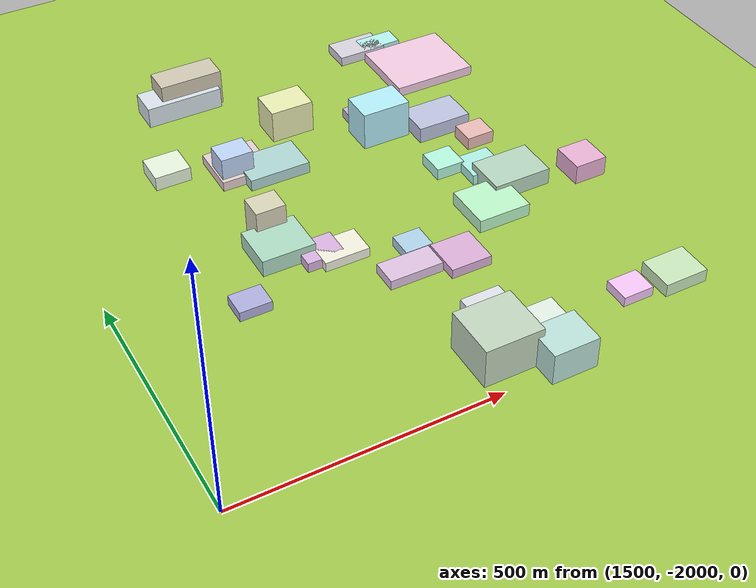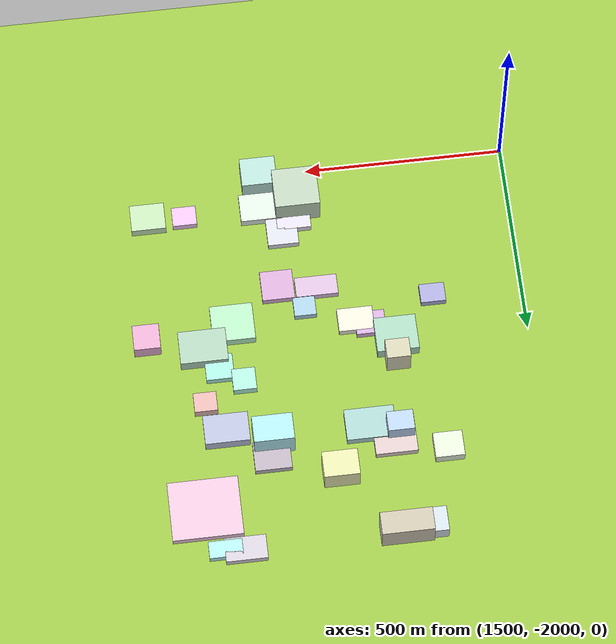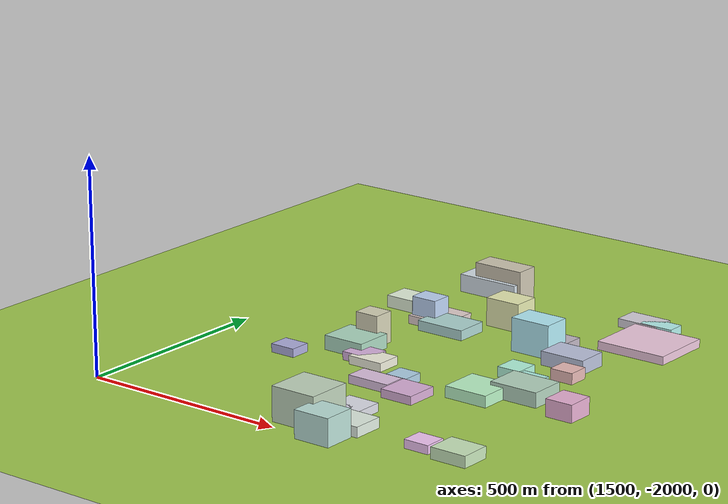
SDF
<sdf version="1.9">
 <world name="city_map">
  <model name="ground_plane">
   <static>1</static>
   <link name="link">
    <collision name="collision">
     <geometry><plane><normal>0 0 1</normal><size>11000 11000</size></plane></geometry>
    </collision>
    <visual name="visual">
     <geometry><plane><normal>0 0 1</normal><size>11000 11000</size></plane></geometry>
     <material>
      <ambient>0.551 0.712 0.210 1</ambient>
      <diffuse>0.651 0.812 0.310 1</diffuse>
      <specular>0.1 0.1 0.05 1</specular>
     </material>
    </visual>
   </link>
  </model>
  <model name="building_691419345">
   <static>1</static>
   <pose>2346.868423731316 -1104.7427232505665 10.0 0 0 0</pose>
   <link name="link">
    <collision name="collision">
     <geometry><box><size>173.26385213700323 151.1597999997747 20</size></box></geometry>
    </collision>
    <visual name="visual">
     <cast_shadows>false</cast_shadows>
     <geometry><box><size>173.26385213700323 151.1597999997747 20</size></box></geometry>
     <material>
      <ambient>0.865 0.714 0.800 1</ambient>
      <diffuse>0.965 0.814 0.900 1</diffuse>
      <specular>0.290 0.244 0.270 1</specular>
      <emissive>0.01 0.01 0.01 1</emissive>
     </material>
    </visual>
   </link>
  </model>
  <model name="building_28731287">
   <static>1</static>
   <pose>2033.1201228582001 -1920.5198547810453 40.02772331991036 0 0 0</pose>
   <link name="link">
    <collision name="collision">
     <geometry><box><size>112.67715750516467 106.58219999938012 80.05544663982072</size></box></geometry>
    </collision>
    <visual name="visual">
     <cast_shadows>false</cast_shadows>
     <geometry><box><size>112.67715750516467 106.58219999938012 80.05544663982072</size></box></geometry>
     <material>
      <ambient>0.680 0.760 0.665 1</ambient>
      <diffuse>0.780 0.860 0.765 1</diffuse>
      <specular>0.234 0.258 0.229 1</specular>
      <emissive>0.01 0.01 0.01 1</emissive>
     </material>
    </visual>
   </link>
  </model>
  <model name="building_865347365">
   <static>1</static>
   <pose>1866.4773051670993 -1245.7085444430354 10.0 0 0 0</pose>
   <link name="link">
    <collision name="collision">
     <geometry><box><size>104.10689999963552 100.60221340576727 20</size></box></geometry>
    </collision>
    <visual name="visual">
     <cast_shadows>false</cast_shadows>
     <geometry><box><size>104.10689999963552 100.60221340576727 20</size></box></geometry>
     <material>
      <ambient>0.809 0.735 0.727 1</ambient>
      <diffuse>0.909 0.835 0.827 1</diffuse>
      <specular>0.273 0.250 0.248 1</specular>
      <emissive>0.01 0.01 0.01 1</emissive>
     </material>
    </visual>
   </link>
  </model>
  <model name="building_747089558">
   <static>1</static>
   <pose>2229.504385133253 -1587.981419107537 13.5 0 0 0</pose>
   <link name="link">
    <collision name="collision">
     <geometry><box><size>106.50778346997836 97.2693000001783 27.0</size></box></geometry>
    </collision>
    <visual name="visual">
     <cast_shadows>false</cast_shadows>
     <geometry><box><size>106.50778346997836 97.2693000001783 27.0</size></box></geometry>
     <material>
      <ambient>0.657 0.888 0.705 1</ambient>
      <diffuse>0.757 0.988 0.805 1</diffuse>
      <specular>0.227 0.296 0.242 1</specular>
      <emissive>0.01 0.01 0.01 1</emissive>
     </material>
    </visual>
   </link>
  </model>
  <model name="building_725032726">
   <static>1</static>
   <pose>2308.9762117744845 -1529.3948427741793 17.451374418200963 0 0 0</pose>
   <link name="link">
    <collision name="collision">
     <geometry><box><size>118.8366000006198 86.7373147287734 34.902748836401926</size></box></geometry>
    </collision>
    <visual name="visual">
     <cast_shadows>false</cast_shadows>
     <geometry><box><size>118.8366000006198 86.7373147287734 34.902748836401926</size></box></geometry>
     <material>
      <ambient>0.630 0.759 0.671 1</ambient>
      <diffuse>0.730 0.859 0.771 1</diffuse>
      <specular>0.219 0.258 0.231 1</specular>
      <emissive>0.01 0.01 0.01 1</emissive>
     </material>
    </visual>
   </link>
  </model>
  <model name="building_76624653">
   <static>1</static>
   <pose>1922.5059678732935 -1280.2685017487154 12.0 0 0 0</pose>
   <link name="link">
    <collision name="collision">
     <geometry><box><size>122.83653506158448 81.27420000018049 24.0</size></box></geometry>
    </collision>
    <visual name="visual">
     <cast_shadows>false</cast_shadows>
     <geometry><box><size>122.83653506158448 81.27420000018049 24.0</size></box></geometry>
     <material>
      <ambient>0.604 0.764 0.748 1</ambient>
      <diffuse>0.704 0.864 0.848 1</diffuse>
      <specular>0.211 0.259 0.254 1</specular>
      <emissive>0.01 0.01 0.01 1</emissive>
     </material>
    </visual>
   </link>
  </model>
  <model name="building_310286338">
   <static>1</static>
   <pose>1846.5372470261364 -1002.4898360027794 21.542424559017014 0 0 0</pose>
   <link name="link">
    <collision name="collision">
     <geometry><box><size>156.08054515707786 62.859300000297935 43.08484911803403</size></box></geometry>
    </collision>
    <visual name="visual">
     <cast_shadows>false</cast_shadows>
     <geometry><box><size>156.08054515707786 62.859300000297935 43.08484911803403</size></box></geometry>
     <material>
      <ambient>0.762 0.808 0.838 1</ambient>
      <diffuse>0.862 0.908 0.938 1</diffuse>
      <specular>0.258 0.272 0.281 1</specular>
      <emissive>0.01 0.01 0.01 1</emissive>
     </material>
    </visual>
   </link>
  </model>
  <model name="building_35492913">
   <static>1</static>
   <pose>1829.2715662392588 -1508.0545058344878 17.18604938761592 0 0 0</pose>
   <link name="link">
    <collision name="collision">
     <geometry><box><size>104.62860000021124 91.99989814084695 34.37209877523184</size></box></geometry>
    </collision>
    <visual name="visual">
     <cast_shadows>false</cast_shadows>
     <geometry><box><size>104.62860000021124 91.99989814084695 34.37209877523184</size></box></geometry>
     <material>
      <ambient>0.600 0.780 0.683 1</ambient>
      <diffuse>0.700 0.880 0.783 1</diffuse>
      <specular>0.210 0.264 0.235 1</specular>
      <emissive>0.01 0.01 0.01 1</emissive>
     </material>
    </visual>
   </link>
  </model>
  <model name="building_436567941">
   <static>1</static>
   <pose>2274.147382458081 -1303.849470848842 16.38209070691395 0 0 0</pose>
   <link name="link">
    <collision name="collision">
     <geometry><box><size>110.81815231533746 75.9128999998353 32.7641814138279</size></box></geometry>
    </collision>
    <visual name="visual">
     <cast_shadows>false</cast_shadows>
     <geometry><box><size>110.81815231533746 75.9128999998353 32.7641814138279</size></box></geometry>
     <material>
      <ambient>0.659 0.689 0.793 1</ambient>
      <diffuse>0.759 0.789 0.893 1</diffuse>
      <specular>0.228 0.237 0.268 1</specular>
      <emissive>0.01 0.01 0.01 1</emissive>
     </material>
    </visual>
   </link>
  </model>
  <model name="building_690844516">
   <static>1</static>
   <pose>2126.126968256426 -1903.0968184163276 12.0 0 0 0</pose>
   <link name="link">
    <collision name="collision">
     <geometry><box><size>103.14120000018079 74.58830499318186 24.0</size></box></geometry>
    </collision>
    <visual name="visual">
     <cast_shadows>false</cast_shadows>
     <geometry><box><size>103.14120000018079 74.58830499318186 24.0</size></box></geometry>
     <material>
      <ambient>0.813 0.866 0.817 1</ambient>
      <diffuse>0.913 0.966 0.917 1</diffuse>
      <specular>0.274 0.290 0.275 1</specular>
      <emissive>0.01 0.01 0.01 1</emissive>
     </material>
    </visual>
   </link>
  </model>
  <model name="building_233847501">
   <static>1</static>
   <pose>1868.7610807164733 -993.4890343639594 38.010175638439236 0 0 0</pose>
   <link name="link">
    <collision name="collision">
     <geometry><box><size>128.3623145739559 57.10950000014492 76.02035127687847</size></box></geometry>
    </collision>
    <visual name="visual">
     <cast_shadows>false</cast_shadows>
     <geometry><box><size>128.3623145739559 57.10950000014492 76.02035127687847</size></box></geometry>
     <material>
      <ambient>0.734 0.702 0.620 1</ambient>
      <diffuse>0.834 0.802 0.720 1</diffuse>
      <specular>0.250 0.241 0.216 1</specular>
      <emissive>0.01 0.01 0.01 1</emissive>
     </material>
    </visual>
   </link>
  </model>
  <model name="building_99094151">
   <static>1</static>
   <pose>2121.515707216675 -1983.4639669072833 32.124227437655236 0 0 0</pose>
   <link name="link">
    <collision name="collision">
     <geometry><box><size>89.06639999975141 76.34635460277246 64.24845487531047</size></box></geometry>
    </collision>
    <visual name="visual">
     <cast_shadows>false</cast_shadows>
     <geometry><box><size>89.06639999975141 76.34635460277246 64.24845487531047</size></box></geometry>
     <material>
      <ambient>0.656 0.808 0.772 1</ambient>
      <diffuse>0.756 0.908 0.872 1</diffuse>
      <specular>0.227 0.272 0.261 1</specular>
      <emissive>0.01 0.01 0.01 1</emissive>
     </material>
    </visual>
   </link>
  </model>
  <model name="building_359643855">
   <static>1</static>
   <pose>2162.1602015422873 -1271.9847113716662 39.57812829710733 0 0 0</pose>
   <link name="link">
    <collision name="collision">
     <geometry><box><size>99.5082604297431 68.00970000054463 79.15625659421465</size></box></geometry>
    </collision>
    <visual name="visual">
     <cast_shadows>false</cast_shadows>
     <geometry><box><size>99.5082604297431 68.00970000054463 79.15625659421465</size></box></geometry>
     <material>
      <ambient>0.625 0.854 0.900 1</ambient>
      <diffuse>0.725 0.954 1.000 1</diffuse>
      <specular>0.217 0.286 0.300 1</specular>
      <emissive>0.01 0.01 0.01 1</emissive>
     </material>
    </visual>
   </link>
  </model>
  <model name="building_849446212">
   <static>1</static>
   <pose>2170.1760706574855 -1223.9953397117397 10.0 0 0 0</pose>
   <link name="link">
    <collision name="collision">
     <geometry><box><size>90.81245938877083 74.48100000045343 20</size></box></geometry>
    </collision>
    <visual name="visual">
     <cast_shadows>false</cast_shadows>
     <geometry><box><size>90.81245938877083 74.48100000045343 20</size></box></geometry>
     <material>
      <ambient>0.677 0.638 0.690 1</ambient>
      <diffuse>0.777 0.738 0.790 1</diffuse>
      <specular>0.233 0.221 0.237 1</specular>
      <emissive>0.01 0.01 0.01 1</emissive>
     </material>
    </visual>
   </link>
  </model>
  <model name="building_835371772">
   <static>1</static>
   <pose>2107.425601558191 -1680.944825579779 10.0 0 0 0</pose>
   <link name="link">
    <collision name="collision">
     <geometry><box><size>81.28089270089463 79.19850000037343 20</size></box></geometry>
    </collision>
    <visual name="visual">
     <cast_shadows>false</cast_shadows>
     <geometry><box><size>81.28089270089463 79.19850000037343 20</size></box></geometry>
     <material>
      <ambient>0.779 0.610 0.772 1</ambient>
      <diffuse>0.879 0.710 0.872 1</diffuse>
      <specular>0.264 0.213 0.261 1</specular>
      <emissive>0.01 0.01 0.01 1</emissive>
     </material>
    </visual>
   </link>
  </model>
  <model name="building_816014096">
   <static>1</static>
   <pose>2411.5084893474814 -1905.2552237422644 13.334870168887804 0 0 0</pose>
   <link name="link">
    <collision name="collision">
     <geometry><box><size>87.00180000007407 71.64257674247497 26.669740337775607</size></box></geometry>
    </collision>
    <visual name="visual">
     <cast_shadows>false</cast_shadows>
     <geometry><box><size>87.00180000007407 71.64257674247497 26.669740337775607</size></box></geometry>
     <material>
      <ambient>0.713 0.834 0.660 1</ambient>
      <diffuse>0.813 0.934 0.760 1</diffuse>
      <specular>0.244 0.280 0.228 1</specular>
      <emissive>0.01 0.01 0.01 1</emissive>
     </material>
    </visual>
   </link>
  </model>
  <model name="building_198923340">
   <static>1</static>
   <pose>2259.749422106249 -990.9548235795173 10.0 0 0 0</pose>
   <link name="link">
    <collision name="collision">
     <geometry><box><size>101.9868000000983 60.610670027320985 20</size></box></geometry>
    </collision>
    <visual name="visual">
     <cast_shadows>false</cast_shadows>
     <geometry><box><size>101.9868000000983 60.610670027320985 20</size></box></geometry>
     <material>
      <ambient>0.768 0.747 0.791 1</ambient>
      <diffuse>0.868 0.847 0.891 1</diffuse>
      <specular>0.260 0.254 0.267 1</specular>
      <emissive>0.01 0.01 0.01 1</emissive>
     </material>
    </visual>
   </link>
  </model>
  <model name="building_553238817">
   <static>1</static>
   <pose>2046.415388186291 -1869.5636676966826 10.0 0 0 0</pose>
   <link name="link">
    <collision name="collision">
     <geometry><box><size>85.61494632395548 71.50619999960384 20</size></box></geometry>
    </collision>
    <visual name="visual">
     <cast_shadows>false</cast_shadows>
     <geometry><box><size>85.61494632395548 71.50619999960384 20</size></box></geometry>
     <material>
      <ambient>0.825 0.805 0.893 1</ambient>
      <diffuse>0.925 0.905 0.993 1</diffuse>
      <specular>0.278 0.271 0.298 1</specular>
      <emissive>0.01 0.01 0.01 1</emissive>
     </material>
    </visual>
   </link>
  </model>
  <model name="building_938794081">
   <static>1</static>
   <pose>2078.280421600101 -1830.9838465976866 10.0 0 0 0</pose>
   <link name="link">
    <collision name="collision">
     <geometry><box><size>77.76660000020286 77.627779956352 20</size></box></geometry>
    </collision>
    <visual name="visual">
     <cast_shadows>false</cast_shadows>
     <geometry><box><size>77.76660000020286 77.627779956352 20</size></box></geometry>
     <material>
      <ambient>0.800 0.807 0.847 1</ambient>
      <diffuse>0.900 0.907 0.947 1</diffuse>
      <specular>0.270 0.272 0.284 1</specular>
      <emissive>0.01 0.01 0.01 1</emissive>
     </material>
    </visual>
   </link>
  </model>
  <model name="building_641897125">
   <static>1</static>
   <pose>2008.909304532443 -1164.8907595185922 33.75316406773115 0 0 0</pose>
   <link name="link">
    <collision name="collision">
     <geometry><box><size>87.94001124634194 66.54449999998491 67.5063281354623</size></box></geometry>
    </collision>
    <visual name="visual">
     <cast_shadows>false</cast_shadows>
     <geometry><box><size>87.94001124634194 66.54449999998491 67.5063281354623</size></box></geometry>
     <material>
      <ambient>0.835 0.850 0.621 1</ambient>
      <diffuse>0.935 0.950 0.721 1</diffuse>
      <specular>0.281 0.285 0.216 1</specular>
      <emissive>0.01 0.01 0.01 1</emissive>
     </material>
    </visual>
   </link>
  </model>
  <model name="building_470821013">
   <static>1</static>
   <pose>2010.5627775263674 -1667.7019216496024 10.0 0 0 0</pose>
   <link name="link">
    <collision name="collision">
     <geometry><box><size>105.51592087712137 53.20230000022974 20</size></box></geometry>
    </collision>
    <visual name="visual">
     <cast_shadows>false</cast_shadows>
     <geometry><box><size>105.51592087712137 53.20230000022974 20</size></box></geometry>
     <material>
      <ambient>0.794 0.685 0.804 1</ambient>
      <diffuse>0.894 0.785 0.904 1</diffuse>
      <specular>0.268 0.235 0.271 1</specular>
      <emissive>0.01 0.01 0.01 1</emissive>
     </material>
    </visual>
   </link>
  </model>
  <model name="building_168116273">
   <static>1</static>
   <pose>1923.9512218571297 -1565.3095148640086 10.0 0 0 0</pose>
   <link name="link">
    <collision name="collision">
     <geometry><box><size>88.81110000071146 61.78681876722808 20</size></box></geometry>
    </collision>
    <visual name="visual">
     <cast_shadows>false</cast_shadows>
     <geometry><box><size>88.81110000071146 61.78681876722808 20</size></box></geometry>
     <material>
      <ambient>0.873 0.868 0.797 1</ambient>
      <diffuse>0.973 0.968 0.897 1</diffuse>
      <specular>0.292 0.291 0.269 1</specular>
      <emissive>0.01 0.01 0.01 1</emissive>
     </material>
    </visual>
   </link>
  </model>
  <model name="building_800840683">
   <static>1</static>
   <pose>1739.1992818705735 -1199.3929567589396 14.551196481303496 0 0 0</pose>
   <link name="link">
    <collision name="collision">
     <geometry><box><size>72.11184282124525 65.43450000042128 29.10239296260699</size></box></geometry>
    </collision>
    <visual name="visual">
     <cast_shadows>false</cast_shadows>
     <geometry><box><size>72.11184282124525 65.43450000042128 29.10239296260699</size></box></geometry>
     <material>
      <ambient>0.826 0.882 0.787 1</ambient>
      <diffuse>0.926 0.982 0.887 1</diffuse>
      <specular>0.278 0.295 0.266 1</specular>
      <emissive>0.01 0.01 0.01 1</emissive>
     </material>
    </visual>
   </link>
  </model>
  <model name="building_945274937">
   <static>1</static>
   <pose>2274.4265738022095 -1474.3123042583702 10.5 0 0 0</pose>
   <link name="link">
    <collision name="collision">
     <geometry><box><size>69.4415999999265 66.94052752567192 21.0</size></box></geometry>
    </collision>
    <visual name="visual">
     <cast_shadows>false</cast_shadows>
     <geometry><box><size>69.4415999999265 66.94052752567192 21.0</size></box></geometry>
     <material>
      <ambient>0.607 0.867 0.815 1</ambient>
      <diffuse>0.707 0.967 0.915 1</diffuse>
      <specular>0.212 0.290 0.275 1</specular>
      <emissive>0.01 0.01 0.01 1</emissive>
     </material>
    </visual>
   </link>
  </model>
  <model name="building_712387358">
   <static>1</static>
   <pose>1888.6232547322647 -1552.2455935822206 10.0 0 0 0</pose>
   <link name="link">
    <collision name="collision">
     <geometry><box><size>74.18130000010592 61.07707105228322 20</size></box></geometry>
    </collision>
    <visual name="visual">
     <cast_shadows>false</cast_shadows>
     <geometry><box><size>74.18130000010592 61.07707105228322 20</size></box></geometry>
     <material>
      <ambient>0.773 0.621 0.800 1</ambient>
      <diffuse>0.873 0.721 0.900 1</diffuse>
      <specular>0.262 0.216 0.270 1</specular>
      <emissive>0.01 0.01 0.01 1</emissive>
     </material>
    </visual>
   </link>
  </model>
  <model name="building_899038657">
   <static>1</static>
   <pose>2445.8493615489324 -1567.37329270105 20.35848197770565 0 0 0</pose>
   <link name="link">
    <collision name="collision">
     <geometry><box><size>66.44866633047555 66.37799999961658 40.7169639554113</size></box></geometry>
    </collision>
    <visual name="visual">
     <cast_shadows>false</cast_shadows>
     <geometry><box><size>66.44866633047555 66.37799999961658 40.7169639554113</size></box></geometry>
     <material>
      <ambient>0.838 0.612 0.756 1</ambient>
      <diffuse>0.938 0.712 0.856 1</diffuse>
      <specular>0.281 0.214 0.257 1</specular>
      <emissive>0.01 0.01 0.01 1</emissive>
     </material>
    </visual>
   </link>
  </model>
  <model name="building_331270922">
   <static>1</static>
   <pose>2308.2770387948894 -995.6282536828951 10.0 0 0 0</pose>
   <link name="link">
    <collision name="collision">
     <geometry><box><size>82.39529999987383 43.276053325865995 20</size></box></geometry>
    </collision>
    <visual name="visual">
     <cast_shadows>false</cast_shadows>
     <geometry><box><size>82.39529999987383 43.276053325865995 20</size></box></geometry>
     <material>
      <ambient>0.633 0.876 0.860 1</ambient>
      <diffuse>0.733 0.976 0.960 1</diffuse>
      <specular>0.220 0.293 0.288 1</specular>
      <emissive>0.01 0.01 0.01 1</emissive>
     </material>
    </visual>
   </link>
  </model>
  <model name="building_863578834">
   <static>1</static>
   <pose>2216.9141410512743 -1433.3070522464452 12.0 0 0 0</pose>
   <link name="link">
    <collision name="collision">
     <geometry><box><size>58.09739999985908 57.78543690866058 24.0</size></box></geometry>
    </collision>
    <visual name="visual">
     <cast_shadows>false</cast_shadows>
     <geometry><box><size>58.09739999985908 57.78543690866058 24.0</size></box></geometry>
     <material>
      <ambient>0.626 0.898 0.795 1</ambient>
      <diffuse>0.726 0.998 0.895 1</diffuse>
      <specular>0.218 0.300 0.268 1</specular>
      <emissive>0.01 0.01 0.01 1</emissive>
     </material>
    </visual>
   </link>
  </model>
  <model name="building_160404357">
   <static>1</static>
   <pose>1850.815985592957 -1260.9882744247816 32.05542133055264 0 0 0</pose>
   <link name="link">
    <collision name="collision">
     <geometry><box><size>64.87950000024512 50.74367692639745 64.11084266110528</size></box></geometry>
    </collision>
    <visual name="visual">
     <cast_shadows>false</cast_shadows>
     <geometry><box><size>64.87950000024512 50.74367692639745 64.11084266110528</size></box></geometry>
     <material>
      <ambient>0.666 0.758 0.891 1</ambient>
      <diffuse>0.766 0.858 0.991 1</diffuse>
      <specular>0.230 0.257 0.297 1</specular>
      <emissive>0.01 0.01 0.01 1</emissive>
     </material>
    </visual>
   </link>
  </model>
  <model name="building_317288408">
   <static>1</static>
   <pose>2319.6746526114225 -1900.5631453235458 10.0 0 0 0</pose>
   <link name="link">
    <collision name="collision">
     <geometry><box><size>61.161000000169 51.777432349506945 20</size></box></geometry>
    </collision>
    <visual name="visual">
     <cast_shadows>false</cast_shadows>
     <geometry><box><size>61.161000000169 51.777432349506945 20</size></box></geometry>
     <material>
      <ambient>0.887 0.704 0.898 1</ambient>
      <diffuse>0.987 0.804 0.998 1</diffuse>
      <specular>0.296 0.241 0.299 1</specular>
      <emissive>0.01 0.01 0.01 1</emissive>
     </material>
    </visual>
   </link>
  </model>
  <model name="building_611306871">
   <static>1</static>
   <pose>1724.6243581295016 -1614.492678250836 10.0 0 0 0</pose>
   <link name="link">
    <collision name="collision">
     <geometry><box><size>62.70390000005932 50.37580114528711 20</size></box></geometry>
    </collision>
    <visual name="visual">
     <cast_shadows>false</cast_shadows>
     <geometry><box><size>62.70390000005932 50.37580114528711 20</size></box></geometry>
     <material>
      <ambient>0.604 0.605 0.789 1</ambient>
      <diffuse>0.704 0.705 0.889 1</diffuse>
      <specular>0.211 0.211 0.267 1</specular>
      <emissive>0.01 0.01 0.01 1</emissive>
     </material>
    </visual>
   </link>
  </model>
  <model name="building_482453575">
   <static>1</static>
   <pose>1833.3562235995523 -1449.2701959145184 37.11632907331388 0 0 0</pose>
   <link name="link">
    <collision name="collision">
     <geometry><box><size>59.2739999994123 50.421454178828334 74.23265814662776</size></box></geometry>
    </collision>
    <visual name="visual">
     <cast_shadows>false</cast_shadows>
     <geometry><box><size>59.2739999994123 50.421454178828334 74.23265814662776</size></box></geometry>
     <material>
      <ambient>0.765 0.751 0.641 1</ambient>
      <diffuse>0.865 0.851 0.741 1</diffuse>
      <specular>0.260 0.255 0.222 1</specular>
      <emissive>0.01 0.01 0.01 1</emissive>
     </material>
    </visual>
   </link>
  </model>
  <model name="building_761803192">
   <static>1</static>
   <pose>2318.180083081604 -1381.9285266121697 13.119032364608621 0 0 0</pose>
   <link name="link">
    <collision name="collision">
     <geometry><box><size>57.07619999975577 50.48150680142132 26.238064729217243</size></box></geometry>
    </collision>
    <visual name="visual">
     <cast_shadows>false</cast_shadows>
     <geometry><box><size>57.07619999975577 50.48150680142132 26.238064729217243</size></box></geometry>
     <material>
      <ambient>0.836 0.652 0.637 1</ambient>
      <diffuse>0.936 0.752 0.737 1</diffuse>
      <specular>0.281 0.226 0.221 1</specular>
      <emissive>0.01 0.01 0.01 1</emissive>
     </material>
    </visual>
   </link>
  </model>
  <model name="building_24391208">
   <static>1</static>
   <pose>2046.0222061808013 -1614.756663243071 10.0 0 0 0</pose>
   <link name="link">
    <collision name="collision">
     <geometry><box><size>54.90926604807049 50.89350000006476 20</size></box></geometry>
    </collision>
    <visual name="visual">
     <cast_shadows>false</cast_shadows>
     <geometry><box><size>54.90926604807049 50.89350000006476 20</size></box></geometry>
     <material>
      <ambient>0.607 0.748 0.836 1</ambient>
      <diffuse>0.707 0.848 0.936 1</diffuse>
      <specular>0.212 0.254 0.281 1</specular>
      <emissive>0.01 0.01 0.01 1</emissive>
     </material>
    </visual>
   </link>
  </model>
 </world>
</sdf>
